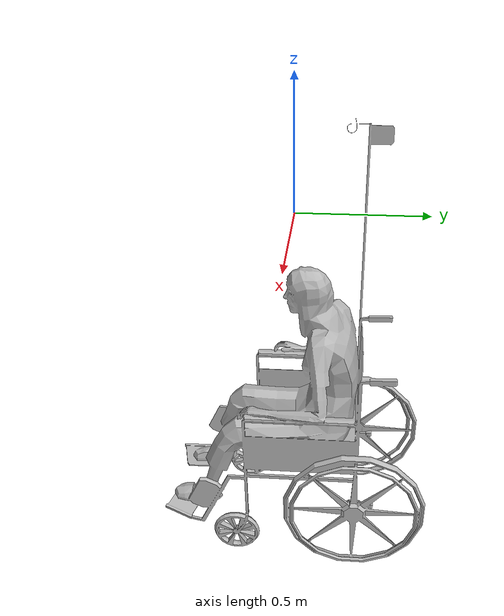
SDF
<?xml version="1.0" ?>
<sdf version="1.5">

<model name="actor_model">
  <pose>0 -0 -0.75 0 0 0</pose>
  <link name="link">
    <collision name="collision_base">
      <pose>0 -0 -0.75 0 0 0</pose>
      <geometry>
        <box>
          <size>.6 .9 0.001</size>
        </box>
      </geometry>
    </collision>

    <collision name="collision_model">
      <pose>0 -0 -0.75 0 0 0</pose>
      <geometry>
        <mesh>
          <uri>model://PatientWheelChair/meshes/PatientWheelChair_Col.obj</uri>
        </mesh>
      </geometry>
      <!-- To reduce the computations, cancel the stiffness configuration of agents -->
      <surface>
        <contact>
          <ode>
            <kp>9999</kp>
            <kd>1</kd>
          </ode>
        </contact>
      </surface>
    </collision>

    <visual name="visual">
      <pose>0 -0 -0.75 0 0 0</pose>
      <geometry>
        <mesh>
          <uri>model://PatientWheelChair/meshes/PatientWheelChair.obj</uri>
        </mesh>
      </geometry>
    </visual>
  </link>
</model>

</sdf>
